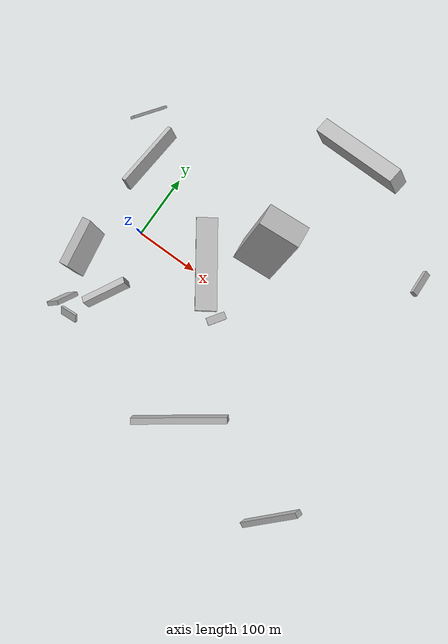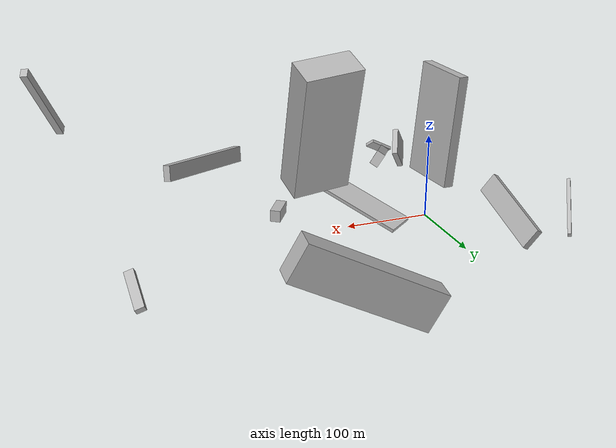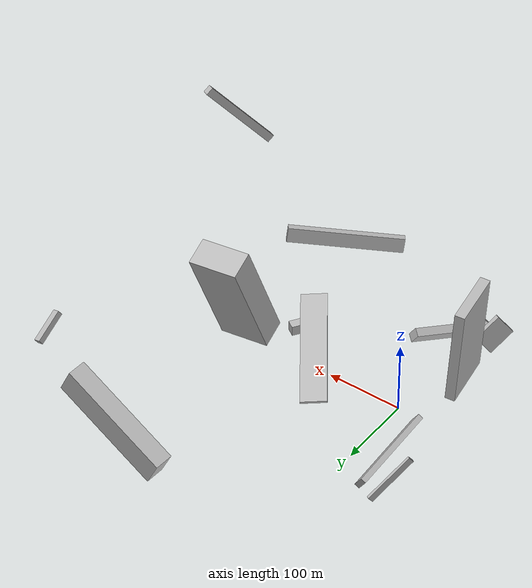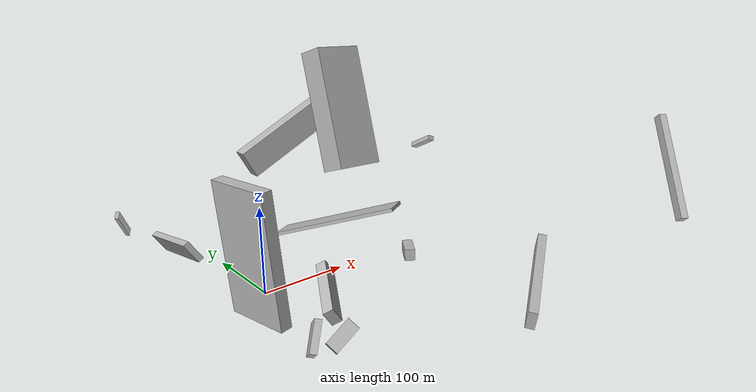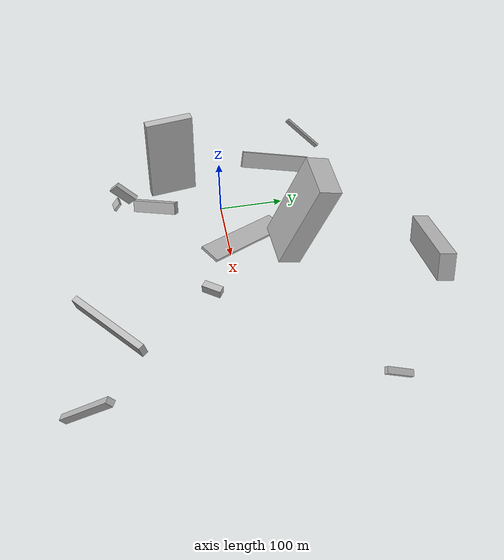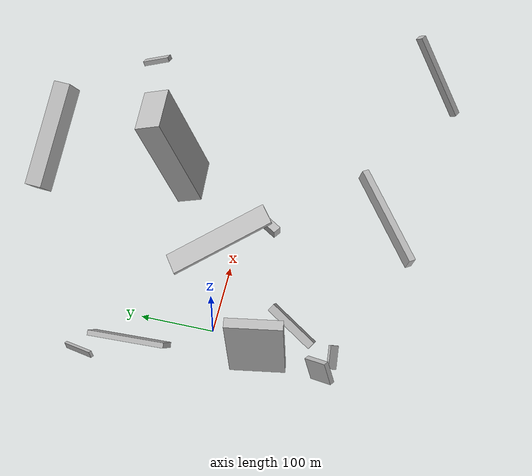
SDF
<sdf version="1.6">
 <world name="default">
  <scene>
   <sky><clouds><speed>12</speed></clouds></sky>
   <ambient>0.4 0.4 0.4 1</ambient>
   <background>0.7 0.7 0.7 1</background>
   <shadows>1</shadows>
  </scene>
  <gravity>0 0 -9.8066</gravity>
  <magnetic_field>6e-06 2.3e-05 -4.2e-05</magnetic_field>
  <physics default="0" name="default_physics" type="ode">
   <ode>
    <solver>
     <type>quick</type>
     <iters>10</iters>
     <sor>1.0</sor>
     <use_dynamic_moi_rescaling>0</use_dynamic_moi_rescaling>
    </solver>
    <constraints>
     <cfm>0</cfm>
     <erp>0.2</erp>
     <contact_max_correcting_vel>100</contact_max_correcting_vel>
     <contact_surface_layer>0.001</contact_surface_layer>
    </constraints>
   </ode>
   <max_step_size>0.004</max_step_size>
   <real_time_factor>1</real_time_factor>
   <real_time_update_rate>250</real_time_update_rate>
  </physics>
  <light name="sun" type="directional">
   <pose>0 0 10 0 0 0</pose>
   <diffuse>0.8 0.8 0.8 1</diffuse>
   <specular>0.2 0.2 0.2 1</specular>
   <attenuation>
    <range>1000</range>
    <constant>0.9</constant>
    <linear>0.01</linear>
    <quadratic>0.001</quadratic>
   </attenuation>
   <direction>-0.5 0.1 -0.9</direction>
  </light>
  <model name="building_1">
   <static>0</static>
   <pose>70.62450630745928 77.16171576108451 29.899428782640822 0.30233609400324 -1.251725279303475 1.8716143960117684</pose>
   <link name="link">
    <gravity>0</gravity>
    <pose>0 0 75.0 0 0 0</pose>
    <collision name="collision"><geometry><box><size>4 33 150</size></box></geometry></collision>
    <visual name="visual">
     <cast_shadows>0</cast_shadows>
     <geometry><box><size>4 33 150</size></box></geometry>
     <material>
      <script>
       <uri>model://HANNAS_wall/materials/scripts</uri>
       <uri>model://HANNAS_wall/materials/textures</uri>
       <name>vrc/HANNAS_wall</name>
      </script>
     </material>
    </visual>
   </link>
  </model>
  <model name="building_2">
   <static>0</static>
   <pose>406.82390651146795 -233.80274237780435 119.49385622312701 -2.972677512229635 -0.8738620612514248 0.9742733765653578</pose>
   <link name="link">
    <gravity>0</gravity>
    <pose>0 0 5.5 0 0 0</pose>
    <collision name="collision"><geometry><box><size>129 9 11</size></box></geometry></collision>
    <visual name="visual">
     <cast_shadows>0</cast_shadows>
     <geometry><box><size>129 9 11</size></box></geometry>
     <material>
      <script>
       <uri>model://HANNAS_wall/materials/scripts</uri>
       <uri>model://HANNAS_wall/materials/textures</uri>
       <name>vrc/HANNAS_wall</name>
      </script>
     </material>
    </visual>
   </link>
  </model>
  <model name="building_3">
   <static>0</static>
   <pose>169.99290076269813 67.47657916427322 91.57468773887354 0.3472467977417866 -0.07971031897768259 -3.0613191645205338</pose>
   <link name="link">
    <gravity>0</gravity>
    <pose>0 0 75.0 0 0 0</pose>
    <collision name="collision"><geometry><box><size>63 34 150</size></box></geometry></collision>
    <visual name="visual">
     <cast_shadows>0</cast_shadows>
     <geometry><box><size>63 34 150</size></box></geometry>
     <material>
      <script>
       <uri>model://HANNAS_wall/materials/scripts</uri>
       <uri>model://HANNAS_wall/materials/textures</uri>
       <name>vrc/HANNAS_wall</name>
      </script>
     </material>
    </visual>
   </link>
  </model>
  <model name="building_4">
   <static>0</static>
   <pose>17.50270567262505 -105.56026333516203 32.605459738697725 -0.5319445616215471 -0.24306328577715516 1.0633413849231494</pose>
   <link name="link">
    <gravity>0</gravity>
    <pose>0 0 9.0 0 0 0</pose>
    <collision name="collision"><geometry><box><size>73 11 18</size></box></geometry></collision>
    <visual name="visual">
     <cast_shadows>0</cast_shadows>
     <geometry><box><size>73 11 18</size></box></geometry>
     <material>
      <script>
       <uri>model://HANNAS_wall/materials/scripts</uri>
       <uri>model://HANNAS_wall/materials/textures</uri>
       <name>vrc/HANNAS_wall</name>
      </script>
     </material>
    </visual>
   </link>
  </model>
  <model name="building_5">
   <static>0</static>
   <pose>-43.34385199342589 -106.01334201978561 88.32475351123144 2.088814679939025 -1.4932082251007854 2.7800528744153215</pose>
   <link name="link">
    <gravity>0</gravity>
    <pose>0 0 36.5 0 0 0</pose>
    <collision name="collision"><geometry><box><size>141 13 73</size></box></geometry></collision>
    <visual name="visual">
     <cast_shadows>0</cast_shadows>
     <geometry><box><size>141 13 73</size></box></geometry>
     <material>
      <script>
       <uri>model://HANNAS_wall/materials/scripts</uri>
       <uri>model://HANNAS_wall/materials/textures</uri>
       <name>vrc/HANNAS_wall</name>
      </script>
     </material>
    </visual>
   </link>
  </model>
  <model name="building_6">
   <static>0</static>
   <pose>-11.625424896875057 -170.2053283637797 24.75261993985725 0.6582434947588122 -0.7028395226498476 -1.9358240850646622</pose>
   <link name="link">
    <gravity>0</gravity>
    <pose>0 0 7.0 0 0 0</pose>
    <collision name="collision"><geometry><box><size>4 31 14</size></box></geometry></collision>
    <visual name="visual">
     <cast_shadows>0</cast_shadows>
     <geometry><box><size>4 31 14</size></box></geometry>
     <material>
      <script>
       <uri>model://HANNAS_wall/materials/scripts</uri>
       <uri>model://HANNAS_wall/materials/textures</uri>
       <name>vrc/HANNAS_wall</name>
      </script>
     </material>
    </visual>
   </link>
  </model>
  <model name="building_7">
   <static>0</static>
   <pose>-79.4223173960338 176.1557272193458 36.88881200503078 -0.21378455084445638 0.865968835821248 -2.3403856667048824</pose>
   <link name="link">
    <gravity>0</gravity>
    <pose>0 0 33.5 0 0 0</pose>
    <collision name="collision"><geometry><box><size>8 4 67</size></box></geometry></collision>
    <visual name="visual">
     <cast_shadows>0</cast_shadows>
     <geometry><box><size>8 4 67</size></box></geometry>
     <material>
      <script>
       <uri>model://HANNAS_wall/materials/scripts</uri>
       <uri>model://HANNAS_wall/materials/textures</uri>
       <name>vrc/HANNAS_wall</name>
      </script>
     </material>
    </visual>
   </link>
  </model>
  <model name="building_8">
   <static>0</static>
   <pose>215.06650616657117 280.7616296356721 63.32040599659821 0.47621984747775137 -0.07110654639604293 -1.6766908303369799</pose>
   <link name="link">
    <gravity>0</gravity>
    <pose>0 0 20.5 0 0 0</pose>
    <collision name="collision"><geometry><box><size>24 150 41</size></box></geometry></collision>
    <visual name="visual">
     <cast_shadows>0</cast_shadows>
     <geometry><box><size>24 150 41</size></box></geometry>
     <material>
      <script>
       <uri>model://HANNAS_wall/materials/scripts</uri>
       <uri>model://HANNAS_wall/materials/textures</uri>
       <name>vrc/HANNAS_wall</name>
      </script>
     </material>
    </visual>
   </link>
  </model>
  <model name="building_9">
   <static>0</static>
   <pose>390.467448720825 202.10521178973852 47.46306219955837 -0.6697413186272876 0.9438724735930935 -2.3293157881916517</pose>
   <link name="link">
    <gravity>0</gravity>
    <pose>0 0 22.0 0 0 0</pose>
    <collision name="collision"><geometry><box><size>7 10 44</size></box></geometry></collision>
    <visual name="visual">
     <cast_shadows>0</cast_shadows>
     <geometry><box><size>7 10 44</size></box></geometry>
     <material>
      <script>
       <uri>model://HANNAS_wall/materials/scripts</uri>
       <uri>model://HANNAS_wall/materials/textures</uri>
       <name>vrc/HANNAS_wall</name>
      </script>
     </material>
    </visual>
   </link>
  </model>
  <model name="building_10">
   <static>0</static>
   <pose>219.63990913844134 -201.59141484078293 22.946168608160235 -1.411756543365313 -0.133030324890647 0.6411492984948101</pose>
   <link name="link">
    <gravity>0</gravity>
    <pose>0 0 5.0 0 0 0</pose>
    <collision name="collision"><geometry><box><size>150 20 10</size></box></geometry></collision>
    <visual name="visual">
     <cast_shadows>0</cast_shadows>
     <geometry><box><size>150 20 10</size></box></geometry>
     <material>
      <script>
       <uri>model://HANNAS_wall/materials/scripts</uri>
       <uri>model://HANNAS_wall/materials/textures</uri>
       <name>vrc/HANNAS_wall</name>
      </script>
     </material>
    </visual>
   </link>
  </model>
  <model name="building_11">
   <static>0</static>
   <pose>163.33881021415192 -52.13193331916959 14.690175418302978 -1.597961190608411 -0.015684783871009175 -0.5923323910288849</pose>
   <link name="link">
    <gravity>0</gravity>
    <pose>0 0 15.0 0 0 0</pose>
    <collision name="collision"><geometry><box><size>12 14 30</size></box></geometry></collision>
    <visual name="visual">
     <cast_shadows>0</cast_shadows>
     <geometry><box><size>12 14 30</size></box></geometry>
     <material>
      <script>
       <uri>model://HANNAS_wall/materials/scripts</uri>
       <uri>model://HANNAS_wall/materials/textures</uri>
       <name>vrc/HANNAS_wall</name>
      </script>
     </material>
    </visual>
   </link>
  </model>
  <model name="building_12">
   <static>0</static>
   <pose>-46.930114401520626 96.5103643818844 27.72827692446667 -0.2662594085275528 -0.5394984683218115 0.07390171520487715</pose>
   <link name="link">
    <gravity>0</gravity>
    <pose>0 0 12.5 0 0 0</pose>
    <collision name="collision"><geometry><box><size>7 110 25</size></box></geometry></collision>
    <visual name="visual">
     <cast_shadows>0</cast_shadows>
     <geometry><box><size>7 110 25</size></box></geometry>
     <material>
      <script>
       <uri>model://HANNAS_wall/materials/scripts</uri>
       <uri>model://HANNAS_wall/materials/textures</uri>
       <name>vrc/HANNAS_wall</name>
      </script>
     </material>
    </visual>
   </link>
  </model>
  <model name="building_13">
   <static>0</static>
   <pose>-43.006239427552494 -165.98100729068227 40.16734200871957 -2.798525252442514 -0.8951152491369971 0.6893811719923743</pose>
   <link name="link">
    <gravity>0</gravity>
    <pose>0 0 19.0 0 0 0</pose>
    <collision name="collision"><geometry><box><size>31 7 38</size></box></geometry></collision>
    <visual name="visual">
     <cast_shadows>0</cast_shadows>
     <geometry><box><size>31 7 38</size></box></geometry>
     <material>
      <script>
       <uri>model://HANNAS_wall/materials/scripts</uri>
       <uri>model://HANNAS_wall/materials/textures</uri>
       <name>vrc/HANNAS_wall</name>
      </script>
     </material>
    </visual>
   </link>
  </model>
 </world>
</sdf>
